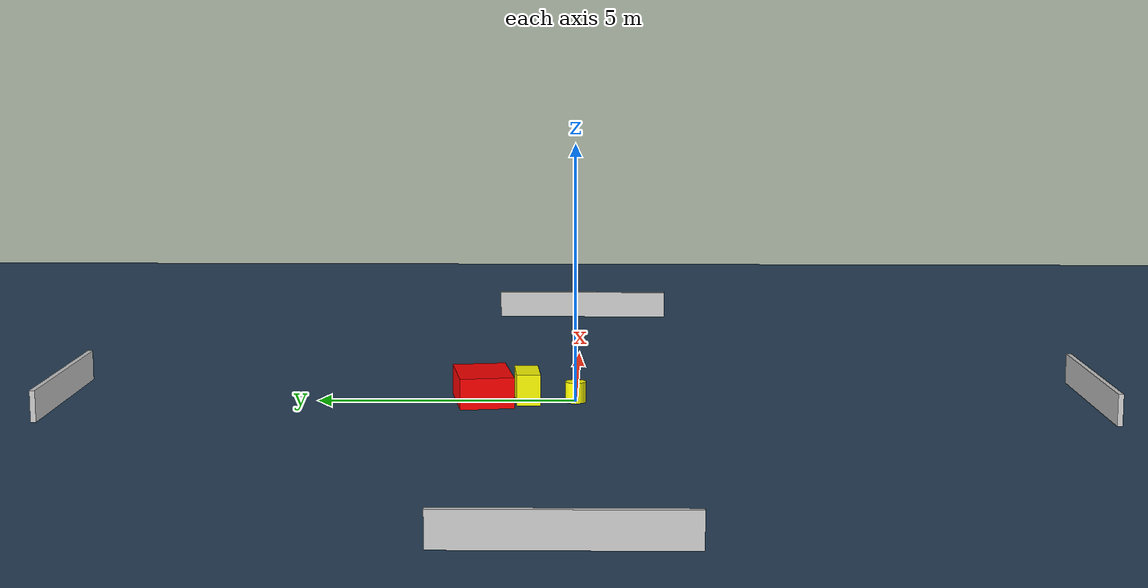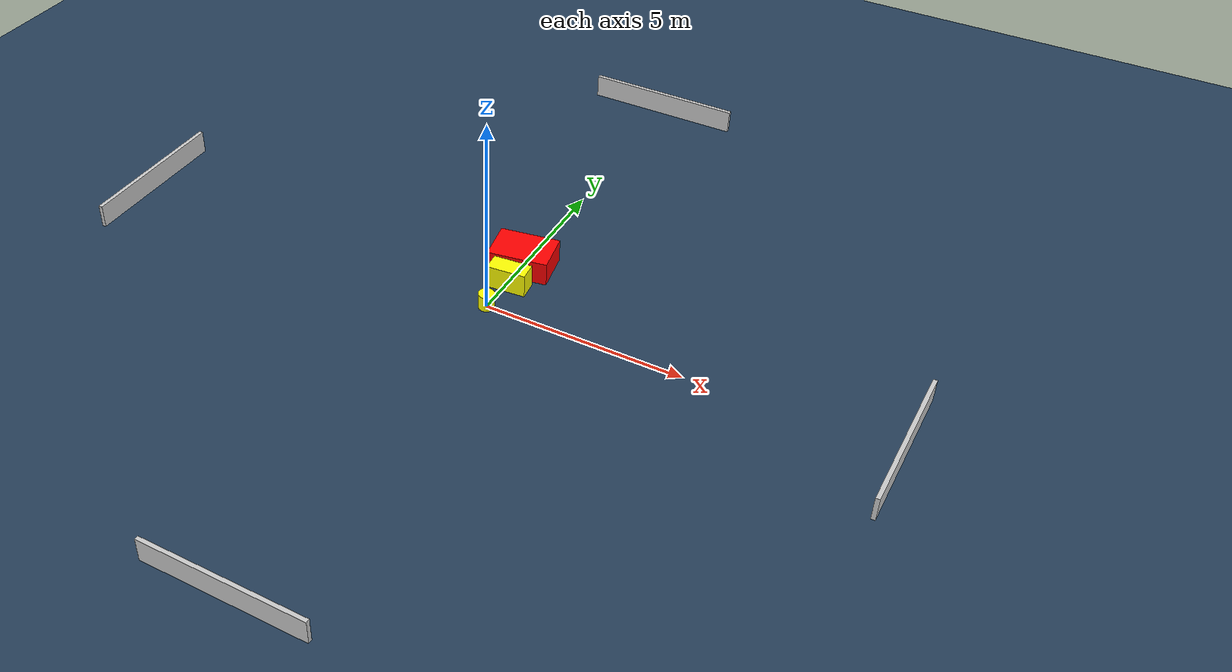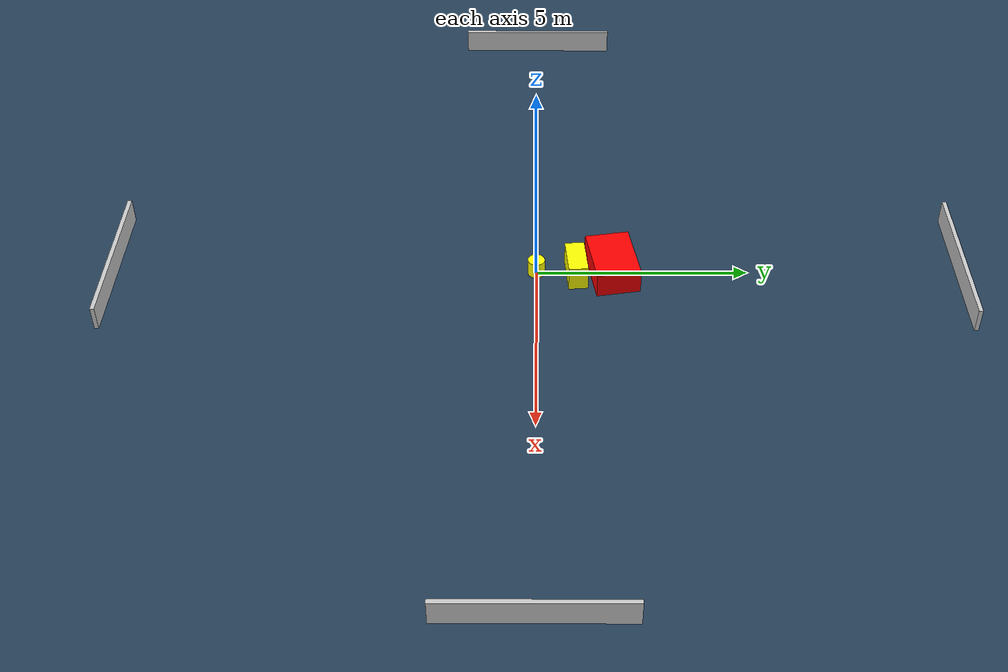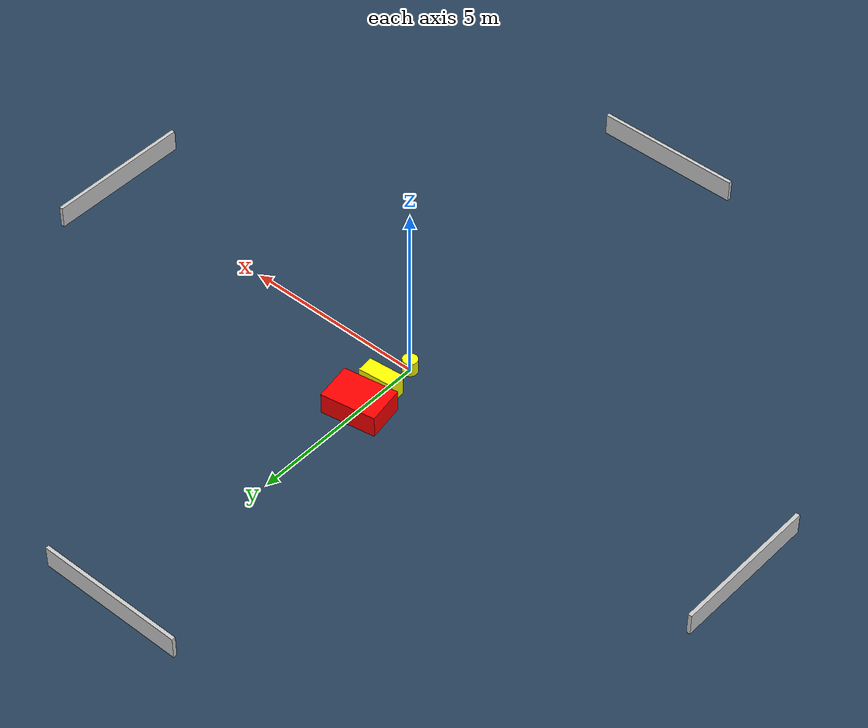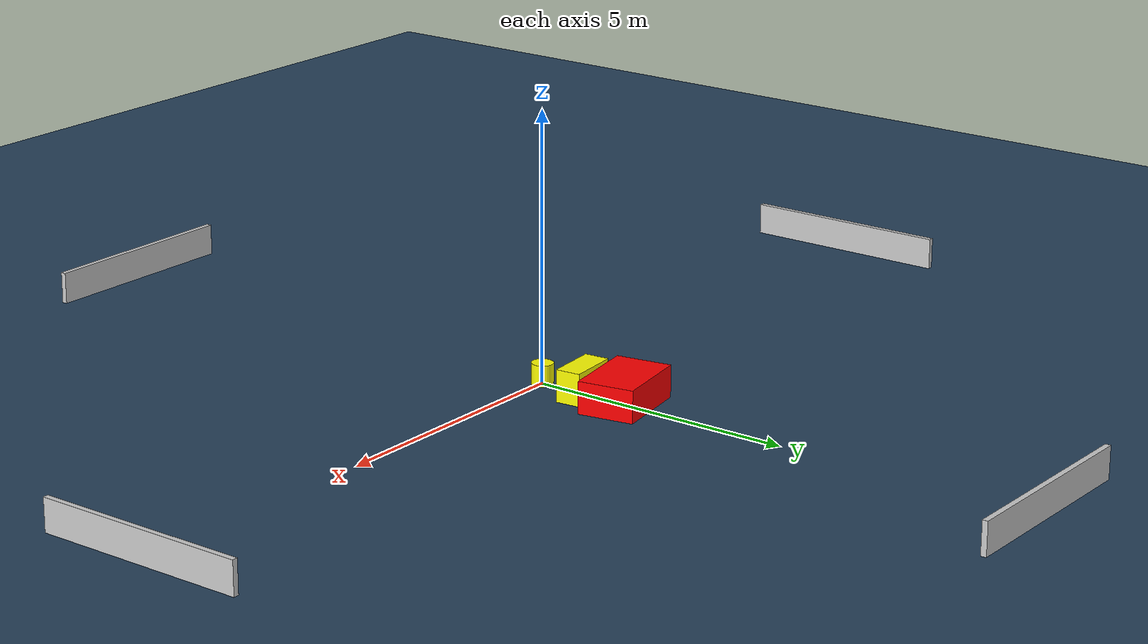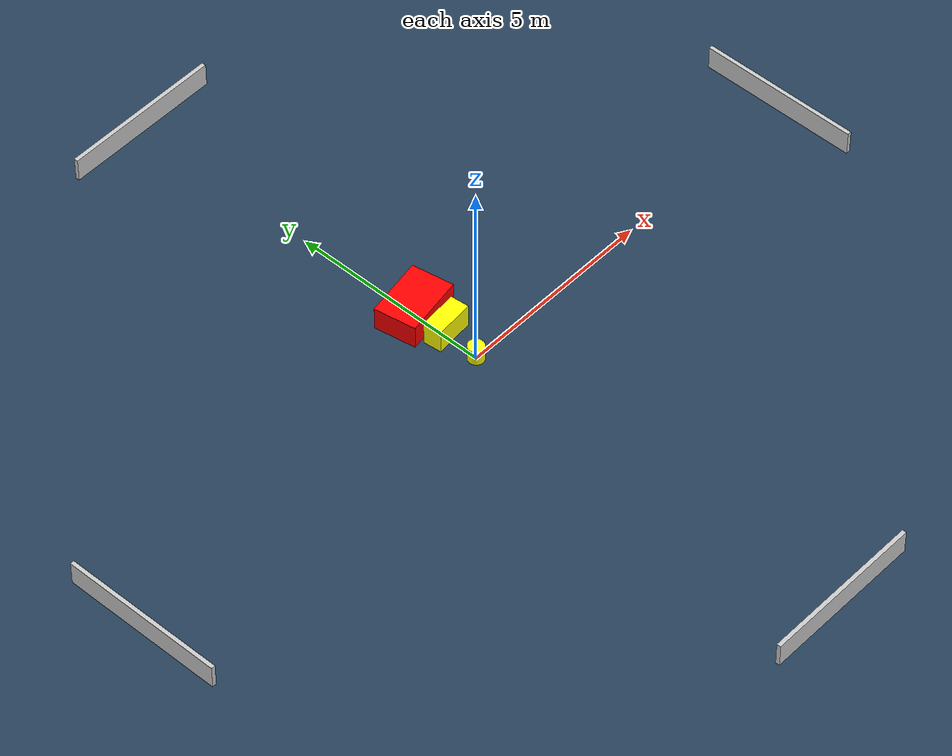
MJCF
<?xml version="1.0" ?>
<mujoco model="generated_environment">
  <option timestep="0.01" integrator="RK4" cone="elliptic"/>
  <default>
    <geom density="1"/>
  </default>
  <asset>
    <texture builtin="gradient" height="3072" name="skybox" rgb1="0.3 0.5 0.7" rgb2="0 0 0" type="skybox" width="512"/>
    <texture builtin="checker" height="300" name="groundplane" rgb1="0.2 0.3 0.4" rgb2="0.1 0.2 0.3" type="2d" width="300"/>
    <material name="groundplane" reflectance="0.2" texrepeat="5 5" texture="groundplane"/>
  </asset>
  <worldbody>
    <light dir="0 0 -1" directional="true" pos="0 0 1.5"/>
    <geom condim="3" friction="0.5 0.005 0.001" material="groundplane" name="floor" pos="0 0 0" size="0 0 0.05" type="plane"/>
    <body name="walls">
      <geom name="wall_1" condim="4" pos="-10.0 0.0 0.3" rgba="0.800000011920929 0.800000011920929 0.800000011920929 1.0" size="0.05 2.0 0.3" type="box"/>
      <geom name="wall_2" condim="4" pos="10.0 0.0 0.3" rgba="0.800000011920929 0.800000011920929 0.800000011920929 1.0" size="0.05 2.0 0.3" type="box"/>
      <geom name="wall_3" condim="4" pos="0.0 -10.0 0.3" rgba="0.800000011920929 0.800000011920929 0.800000011920929 1.0" size="2.0 0.05 0.3" type="box"/>
      <geom name="wall_4" condim="4" pos="0.0 10.0 0.3" rgba="0.800000011920929 0.800000011920929 0.800000011920929 1.0" size="2.0 0.05 0.3" type="box"/>
    </body>
    <body name="robot">
      <joint name="joint_x" type="slide" pos="0 0 0" axis="1 0 0"/>
      <joint name="joint_y" type="slide" pos="0 0 0" axis="0 1 0"/>
      <geom name="robot" type="cylinder" pos="0.0 0.0 0.2" size="0.2 0.2 0.0" mass="5.0" friction="1.0 0.005 0.0001" condim="4" rgba="1.0 1.0 0.0 1.0"/>
    </body>
    <body name="obstacle_1_movable">
      <geom name="obstacle_1_movable" condim="4" pos="0.0879529356342141 0.9437255512631262 0.3" euler="0 0 275.1175229797073" friction="0.0 0.005 0.001" rgba="1.0 1.0 0.0 1.0" size="0.23057907889352003 0.486219198668262 0.3" type="box" mass="0.1"/>
      <joint type="free"/>
    </body>
    <body name="obstacle_2_static">
      <geom name="obstacle_2_static" condim="4" pos="0.00821755795109428 1.8008273902036709 0.3" euler="0 0 9.619914742697695" friction="0.0 0.005 0.001" rgba="1.0 0.0 0.0 1.0" size="0.750681353212274 0.5211130586972208 0.3" type="box"/>
    </body>
  </worldbody>
  <actuator>
    <motor name="actuator_x" joint="joint_x" gear="1" ctrlrange="-1 1"/>
    <motor name="actuator_y" joint="joint_y" gear="1" ctrlrange="-1 1"/>
  </actuator>
</mujoco>
